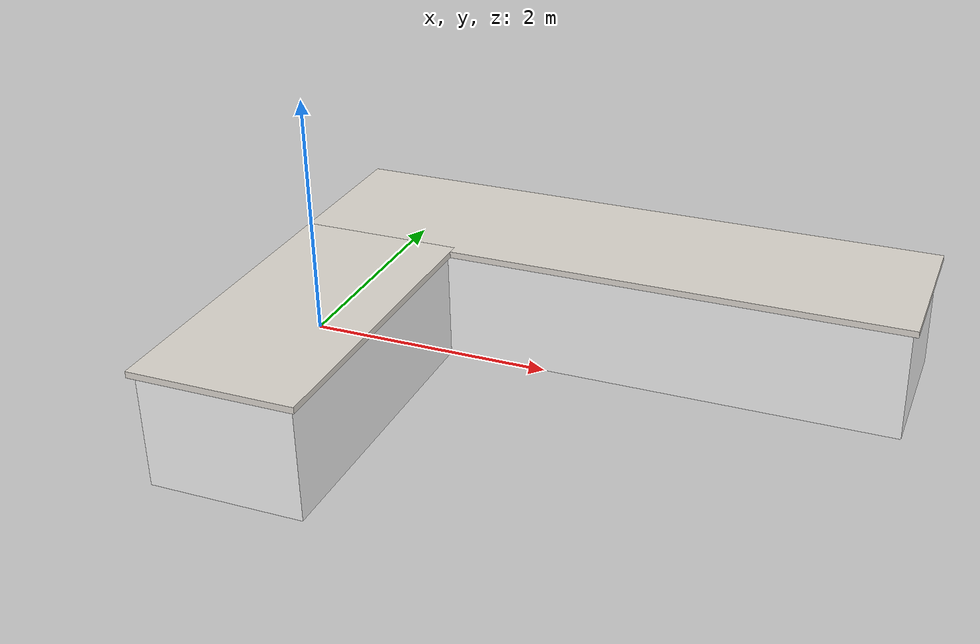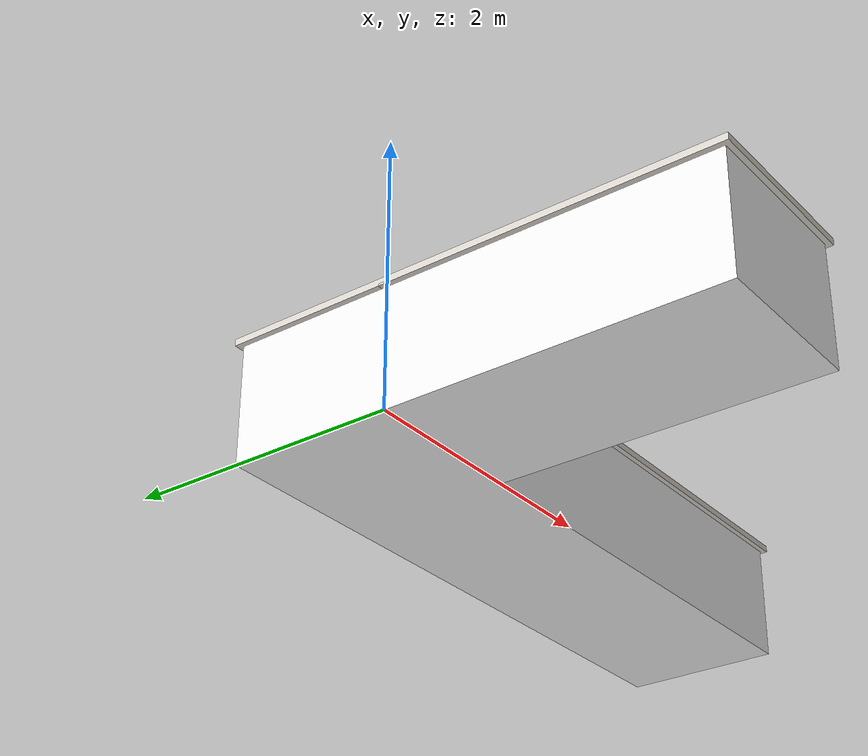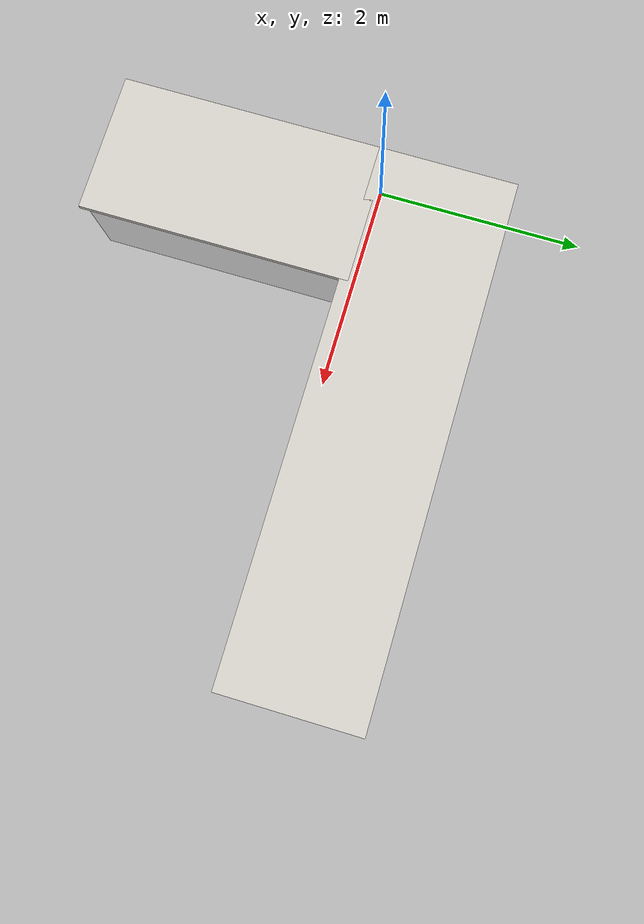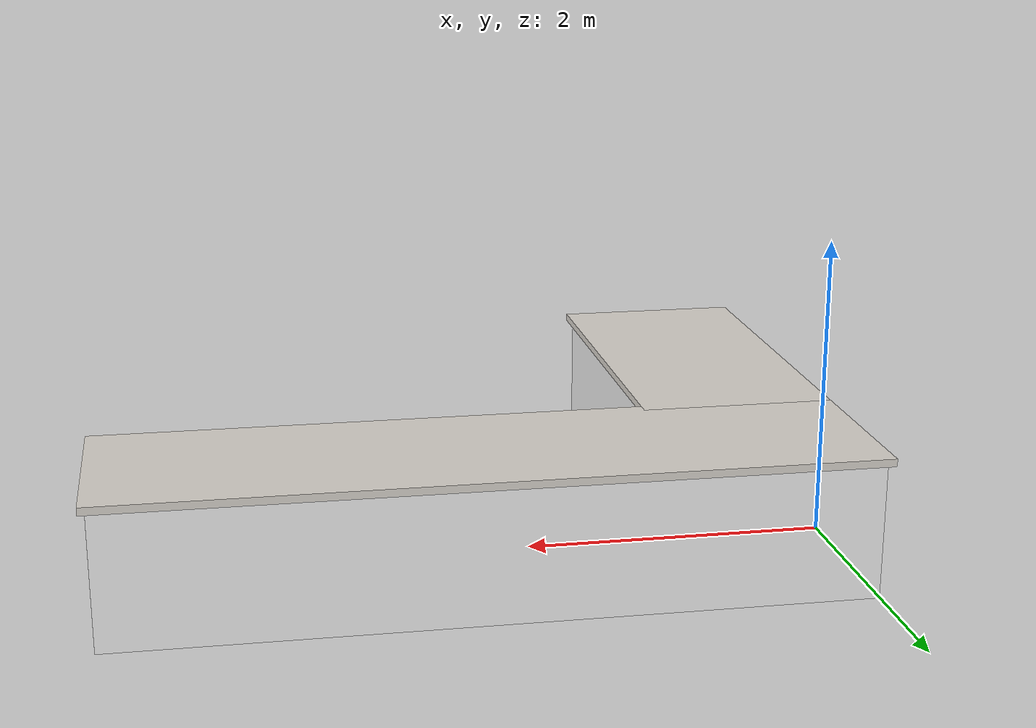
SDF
<?xml version="1.0" ?>
<sdf version="1.7">
  <model name="kitchen_counter">
    <static>true</static>

    <!-- Back run cabinet body -->
    <link name="cabinet_back">
      <!-- local origin at SW corner; centre offset -->
      <pose>2.40 0.60 0.44 0 0 0</pose>
      <collision name="collision">
        <geometry><box><size>4.80 1.20 0.88</size></box></geometry>
      </collision>
      <visual name="visual">
        <geometry><box><size>4.80 1.20 0.88</size></box></geometry>
        <material>
          <ambient>0.96 0.96 0.96 1</ambient>
          <diffuse>0.96 0.96 0.96 1</diffuse>
          <specular>0.25 0.25 0.25 1</specular>
        </material>
      </visual>
    </link>

    <!-- Back run counter top (stone/marble) -->
    <link name="top_back">
      <pose>2.40 0.60 0.905 0 0 0</pose>
      <collision name="collision">
        <geometry><box><size>4.88 1.28 0.05</size></box></geometry>
      </collision>
      <visual name="visual">
        <geometry><box><size>4.88 1.28 0.05</size></box></geometry>
        <material>
          <ambient>0.84 0.82 0.79 1</ambient>
          <diffuse>0.87 0.85 0.82 1</diffuse>
          <specular>0.45 0.45 0.45 1</specular>
        </material>
      </visual>
    </link>

    <!-- Sink basin (depressed, stainless look) — sits in back-run top -->
    <link name="sink_basin">
      <pose>3.60 0.56 0.895 0 0 0</pose>
      <collision name="collision">
        <geometry><box><size>1.00 0.76 0.02</size></box></geometry>
      </collision>
      <visual name="visual">
        <geometry><box><size>1.00 0.76 0.02</size></box></geometry>
        <material>
          <ambient>0.70 0.72 0.72 1</ambient>
          <diffuse>0.75 0.77 0.77 1</diffuse>
          <specular>0.80 0.80 0.80 1</specular>
        </material>
      </visual>
    </link>

    <!-- Side run cabinet body -->
    <link name="cabinet_side">
      <pose>0.60 -1.20 0.44 0 0 0</pose>
      <collision name="collision">
        <geometry><box><size>1.20 2.40 0.88</size></box></geometry>
      </collision>
      <visual name="visual">
        <geometry><box><size>1.20 2.40 0.88</size></box></geometry>
        <material>
          <ambient>0.96 0.96 0.96 1</ambient>
          <diffuse>0.96 0.96 0.96 1</diffuse>
          <specular>0.25 0.25 0.25 1</specular>
        </material>
      </visual>
    </link>

    <!-- Side run counter top -->
    <link name="top_side">
      <pose>0.60 -1.20 0.905 0 0 0</pose>
      <collision name="collision">
        <geometry><box><size>1.28 2.48 0.05</size></box></geometry>
      </collision>
      <visual name="visual">
        <geometry><box><size>1.28 2.48 0.05</size></box></geometry>
        <material>
          <ambient>0.84 0.82 0.79 1</ambient>
          <diffuse>0.87 0.85 0.82 1</diffuse>
          <specular>0.45 0.45 0.45 1</specular>
        </material>
      </visual>
    </link>

  </model>
</sdf>
